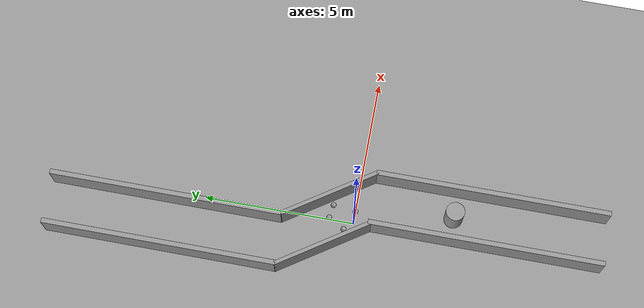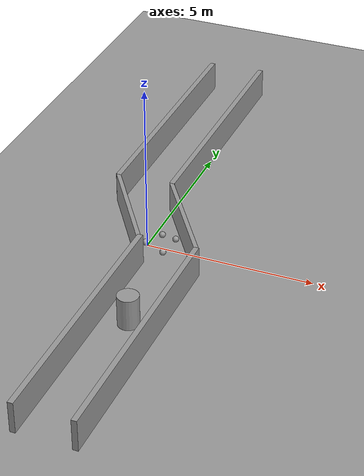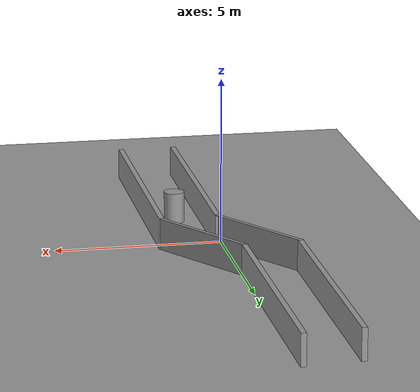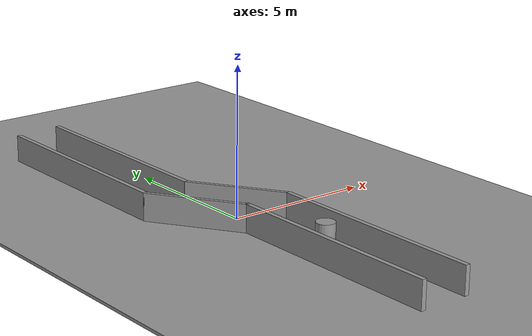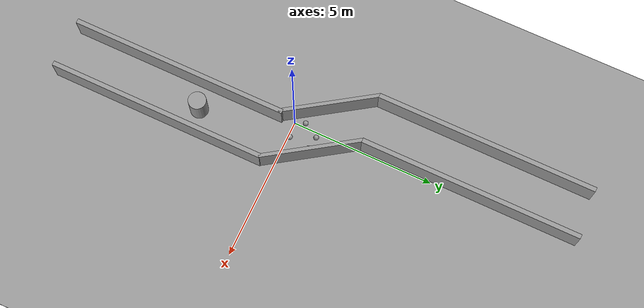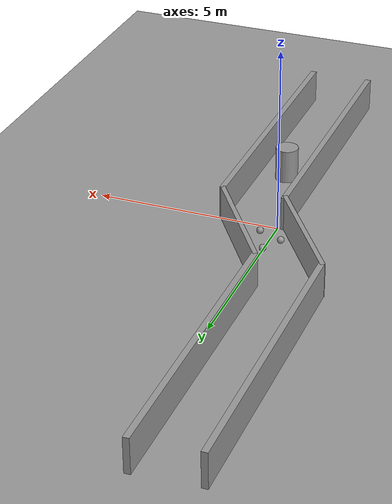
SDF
<?xml version='1.0'?>
<sdf version='1.6'>
  <model name='Corridor'>
    <link name='link_0'>
      <inertial>
        <mass>1.26082</mass>
        <inertia>
          <ixx>6.48048</ixx>
          <ixy>0</ixy>
          <ixz>0</ixz>
          <iyy>0.107821</iyy>
          <iyz>0</iyz>
          <izz>6.37816</izz>
        </inertia>
        <pose frame=''>0 0 0 0 -0 0</pose>
      </inertial>
      <pose frame=''>1.70489 -4.358 0.167782 0 -0 0</pose>
      <visual name='visual'>
        <pose frame=''>0 0 0 0 -0 0</pose>
        <geometry>
          <box>
            <size>0.161859 7.78964 1</size>
          </box>
        </geometry>
        <material>
          <lighting>1</lighting>
          <script>
            <uri>file://media/materials/scripts/gazebo.material</uri>
            <name>Gazebo/Grey</name>
          </script>
          <shader type='pixel'/>
        </material>
        <transparency>0</transparency>
        <cast_shadows>1</cast_shadows>
      </visual>
      <collision name='collision'>
        <laser_retro>0</laser_retro>
        <max_contacts>10</max_contacts>
        <pose frame=''>0 0 0 0 -0 0</pose>
        <geometry>
          <box>
            <size>0.161859 7.78964 1</size>
          </box>
        </geometry>
        <surface>
          <friction>
            <ode>
              <mu>1</mu>
              <mu2>1</mu2>
              <fdir1>0 0 0</fdir1>
              <slip1>0</slip1>
              <slip2>0</slip2>
            </ode>
            <torsional>
              <coefficient>1</coefficient>
              <patch_radius>0</patch_radius>
              <surface_radius>0</surface_radius>
              <use_patch_radius>1</use_patch_radius>
              <ode>
                <slip>0</slip>
              </ode>
            </torsional>
          </friction>
          <bounce>
            <restitution_coefficient>0</restitution_coefficient>
            <threshold>1e+06</threshold>
          </bounce>
          <contact>
            <collide_without_contact>0</collide_without_contact>
            <collide_without_contact_bitmask>1</collide_without_contact_bitmask>
            <collide_bitmask>1</collide_bitmask>
            <ode>
              <soft_cfm>0</soft_cfm>
              <soft_erp>0.2</soft_erp>
              <kp>1e+13</kp>
              <kd>1</kd>
              <max_vel>0.01</max_vel>
              <min_depth>0</min_depth>
            </ode>
            <bullet>
              <split_impulse>1</split_impulse>
              <split_impulse_penetration_threshold>-0.01</split_impulse_penetration_threshold>
              <soft_cfm>0</soft_cfm>
              <soft_erp>0.2</soft_erp>
              <kp>1e+13</kp>
              <kd>1</kd>
            </bullet>
          </contact>
        </surface>
      </collision>
    </link>
    <link name='link_0_clone'>
      <inertial>
        <mass>1.26125</mass>
        <inertia>
          <ixx>6.48266</ixx>
          <ixy>0</ixy>
          <ixz>0</ixz>
          <iyy>0.107858</iyy>
          <iyz>0</iyz>
          <izz>6.38031</izz>
        </inertia>
        <pose frame=''>0 0 0 0 -0 0</pose>
      </inertial>
      <pose frame=''>-0.004073 -4.358 0.167782 0 -0 0</pose>
      <visual name='visual'>
        <pose frame=''>0 0 0 0 -0 0</pose>
        <geometry>
          <box>
            <size>0.161859 7.78964 1</size>
          </box>
        </geometry>
        <material>
          <lighting>1</lighting>
          <script>
            <uri>file://media/materials/scripts/gazebo.material</uri>
            <name>Gazebo/Grey</name>
          </script>
          <shader type='pixel'/>
        </material>
        <transparency>0</transparency>
        <cast_shadows>1</cast_shadows>
      </visual>
      <collision name='collision'>
        <laser_retro>0</laser_retro>
        <max_contacts>10</max_contacts>
        <pose frame=''>0 0 0 0 -0 0</pose>
        <geometry>
          <box>
            <size>0.161859 7.78964 1</size>
          </box>
        </geometry>
        <surface>
          <friction>
            <ode>
              <mu>1</mu>
              <mu2>1</mu2>
              <fdir1>0 0 0</fdir1>
              <slip1>0</slip1>
              <slip2>0</slip2>
            </ode>
            <torsional>
              <coefficient>1</coefficient>
              <patch_radius>0</patch_radius>
              <surface_radius>0</surface_radius>
              <use_patch_radius>1</use_patch_radius>
              <ode>
                <slip>0</slip>
              </ode>
            </torsional>
          </friction>
          <bounce>
            <restitution_coefficient>0</restitution_coefficient>
            <threshold>1e+06</threshold>
          </bounce>
          <contact>
            <collide_without_contact>0</collide_without_contact>
            <collide_without_contact_bitmask>1</collide_without_contact_bitmask>
            <collide_bitmask>1</collide_bitmask>
            <ode>
              <soft_cfm>0</soft_cfm>
              <soft_erp>0.2</soft_erp>
              <kp>1e+13</kp>
              <kd>1</kd>
              <max_vel>0.01</max_vel>
              <min_depth>0</min_depth>
            </ode>
            <bullet>
              <split_impulse>1</split_impulse>
              <split_impulse_penetration_threshold>-0.01</split_impulse_penetration_threshold>
              <soft_cfm>0</soft_cfm>
              <soft_erp>0.2</soft_erp>
              <kp>1e+13</kp>
              <kd>1</kd>
            </bullet>
          </contact>
        </surface>
      </collision>
    </link>
    <link name='link_0_clone_0'>
      <inertial>
        <mass>1.26082</mass>
        <inertia>
          <ixx>6.48048</ixx>
          <ixy>0</ixy>
          <ixz>0</ixz>
          <iyy>0.107821</iyy>
          <iyz>0</iyz>
          <izz>6.37816</izz>
        </inertia>
        <pose frame=''>0 0 0 0 -0 0</pose>
      </inertial>
      <pose frame=''>-0.227465 6.27497 0.167782 0 -0 0</pose>
      <visual name='visual'>
        <pose frame=''>0 0 0 0 -0 0</pose>
        <geometry>
          <box>
            <size>0.161859 7.78964 1</size>
          </box>
        </geometry>
        <material>
          <lighting>1</lighting>
          <script>
            <uri>file://media/materials/scripts/gazebo.material</uri>
            <name>Gazebo/Grey</name>
          </script>
          <shader type='pixel'/>
        </material>
        <transparency>0</transparency>
        <cast_shadows>1</cast_shadows>
      </visual>
      <collision name='collision'>
        <laser_retro>0</laser_retro>
        <max_contacts>10</max_contacts>
        <pose frame=''>0 0 0 0 -0 0</pose>
        <geometry>
          <box>
            <size>0.161859 7.78964 1</size>
          </box>
        </geometry>
        <surface>
          <friction>
            <ode>
              <mu>1</mu>
              <mu2>1</mu2>
              <fdir1>0 0 0</fdir1>
              <slip1>0</slip1>
              <slip2>0</slip2>
            </ode>
            <torsional>
              <coefficient>1</coefficient>
              <patch_radius>0</patch_radius>
              <surface_radius>0</surface_radius>
              <use_patch_radius>1</use_patch_radius>
              <ode>
                <slip>0</slip>
              </ode>
            </torsional>
          </friction>
          <bounce>
            <restitution_coefficient>0</restitution_coefficient>
            <threshold>1e+06</threshold>
          </bounce>
          <contact>
            <collide_without_contact>0</collide_without_contact>
            <collide_without_contact_bitmask>1</collide_without_contact_bitmask>
            <collide_bitmask>1</collide_bitmask>
            <ode>
              <soft_cfm>0</soft_cfm>
              <soft_erp>0.2</soft_erp>
              <kp>1e+13</kp>
              <kd>1</kd>
              <max_vel>0.01</max_vel>
              <min_depth>0</min_depth>
            </ode>
            <bullet>
              <split_impulse>1</split_impulse>
              <split_impulse_penetration_threshold>-0.01</split_impulse_penetration_threshold>
              <soft_cfm>0</soft_cfm>
              <soft_erp>0.2</soft_erp>
              <kp>1e+13</kp>
              <kd>1</kd>
            </bullet>
          </contact>
        </surface>
      </collision>
    </link>
    <link name='link_0_clone_0_clone'>
      <inertial>
        <mass>1.26082</mass>
        <inertia>
          <ixx>6.48048</ixx>
          <ixy>0</ixy>
          <ixz>0</ixz>
          <iyy>0.107821</iyy>
          <iyz>0</iyz>
          <izz>6.37816</izz>
        </inertia>
        <pose frame=''>0 0 0 0 -0 0</pose>
      </inertial>
      <pose frame=''>-1.91077 6.14262 0.167782 0 -0 0</pose>
      <visual name='visual'>
        <pose frame=''>0 0 0 0 -0 0</pose>
        <geometry>
          <box>
            <size>0.161859 7.78964 1</size>
          </box>
        </geometry>
        <material>
          <lighting>1</lighting>
          <script>
            <uri>file://media/materials/scripts/gazebo.material</uri>
            <name>Gazebo/Grey</name>
          </script>
          <shader type='pixel'/>
        </material>
        <transparency>0</transparency>
        <cast_shadows>1</cast_shadows>
      </visual>
      <collision name='collision'>
        <laser_retro>0</laser_retro>
        <max_contacts>10</max_contacts>
        <pose frame=''>0 0 0 0 -0 0</pose>
        <geometry>
          <box>
            <size>0.161859 7.78964 1</size>
          </box>
        </geometry>
        <surface>
          <friction>
            <ode>
              <mu>1</mu>
              <mu2>1</mu2>
              <fdir1>0 0 0</fdir1>
              <slip1>0</slip1>
              <slip2>0</slip2>
            </ode>
            <torsional>
              <coefficient>1</coefficient>
              <patch_radius>0</patch_radius>
              <surface_radius>0</surface_radius>
              <use_patch_radius>1</use_patch_radius>
              <ode>
                <slip>0</slip>
              </ode>
            </torsional>
          </friction>
          <bounce>
            <restitution_coefficient>0</restitution_coefficient>
            <threshold>1e+06</threshold>
          </bounce>
          <contact>
            <collide_without_contact>0</collide_without_contact>
            <collide_without_contact_bitmask>1</collide_without_contact_bitmask>
            <collide_bitmask>1</collide_bitmask>
            <ode>
              <soft_cfm>0</soft_cfm>
              <soft_erp>0.2</soft_erp>
              <kp>1e+13</kp>
              <kd>1</kd>
              <max_vel>0.01</max_vel>
              <min_depth>0</min_depth>
            </ode>
            <bullet>
              <split_impulse>1</split_impulse>
              <split_impulse_penetration_threshold>-0.01</split_impulse_penetration_threshold>
              <soft_cfm>0</soft_cfm>
              <soft_erp>0.2</soft_erp>
              <kp>1e+13</kp>
              <kd>1</kd>
            </bullet>
          </contact>
        </surface>
      </collision>
    </link>
    <link name='link_1'>
      <inertial>
        <mass>0.392117</mass>
        <inertia>
          <ixx>0.0422861</ixx>
          <ixy>0</ixy>
          <ixz>0</ixz>
          <iyy>0.0422861</iyy>
          <iyz>0</iyz>
          <izz>0.0192193</izz>
        </inertia>
        <pose frame=''>0 0 0 0 -0 0</pose>
      </inertial>
      <pose frame=''>0.848895 -3.22281 0.167782 0 -0 0</pose>
      <visual name='visual'>
        <pose frame=''>0 0 0 0 -0 0</pose>
        <geometry>
          <cylinder>
            <radius>0.313095</radius>
            <length>1</length>
          </cylinder>
        </geometry>
        <material>
          <lighting>1</lighting>
          <script>
            <uri>file://media/materials/scripts/gazebo.material</uri>
            <name>Gazebo/Grey</name>
          </script>
          <shader type='pixel'/>
        </material>
        <transparency>0</transparency>
        <cast_shadows>1</cast_shadows>
      </visual>
      <collision name='collision'>
        <laser_retro>0</laser_retro>
        <max_contacts>10</max_contacts>
        <pose frame=''>0 0 0 0 -0 0</pose>
        <geometry>
          <cylinder>
            <radius>0.313095</radius>
            <length>1</length>
          </cylinder>
        </geometry>
        <surface>
          <friction>
            <ode>
              <mu>1</mu>
              <mu2>1</mu2>
              <fdir1>0 0 0</fdir1>
              <slip1>0</slip1>
              <slip2>0</slip2>
            </ode>
            <torsional>
              <coefficient>1</coefficient>
              <patch_radius>0</patch_radius>
              <surface_radius>0</surface_radius>
              <use_patch_radius>1</use_patch_radius>
              <ode>
                <slip>0</slip>
              </ode>
            </torsional>
          </friction>
          <bounce>
            <restitution_coefficient>0</restitution_coefficient>
            <threshold>1e+06</threshold>
          </bounce>
          <contact>
            <collide_without_contact>0</collide_without_contact>
            <collide_without_contact_bitmask>1</collide_without_contact_bitmask>
            <collide_bitmask>1</collide_bitmask>
            <ode>
              <soft_cfm>0</soft_cfm>
              <soft_erp>0.2</soft_erp>
              <kp>1e+13</kp>
              <kd>1</kd>
              <max_vel>0.01</max_vel>
              <min_depth>0</min_depth>
            </ode>
            <bullet>
              <split_impulse>1</split_impulse>
              <split_impulse_penetration_threshold>-0.01</split_impulse_penetration_threshold>
              <soft_cfm>0</soft_cfm>
              <soft_erp>0.2</soft_erp>
              <kp>1e+13</kp>
              <kd>1</kd>
            </bullet>
          </contact>
        </surface>
      </collision>
    </link>
    <link name='link_2'>
      <inertial>
        <mass>0.447994</mass>
        <inertia>
          <ixx>0.499011</ixx>
          <ixy>0</ixy>
          <ixz>0</ixz>
          <iyy>0.0379382</iyy>
          <iyz>0</iyz>
          <izz>0.462283</izz>
        </inertia>
        <pose frame=''>0 0 0 0 -0 0</pose>
      </inertial>
      <pose frame=''>-0.964496 0.844847 0.167782 0 -0 0.594117</pose>
      <visual name='visual'>
        <pose frame=''>0 0 0 0 -0 0</pose>
        <geometry>
          <box>
            <size>0.12734 3.51661 1</size>
          </box>
        </geometry>
        <material>
          <lighting>1</lighting>
          <script>
            <uri>file://media/materials/scripts/gazebo.material</uri>
            <name>Gazebo/Grey</name>
          </script>
          <shader type='pixel'/>
        </material>
        <transparency>0</transparency>
        <cast_shadows>1</cast_shadows>
      </visual>
      <collision name='collision'>
        <laser_retro>0</laser_retro>
        <max_contacts>10</max_contacts>
        <pose frame=''>0 0 0 0 -0 0</pose>
        <geometry>
          <box>
            <size>0.12734 3.51661 1</size>
          </box>
        </geometry>
        <surface>
          <friction>
            <ode>
              <mu>1</mu>
              <mu2>1</mu2>
              <fdir1>0 0 0</fdir1>
              <slip1>0</slip1>
              <slip2>0</slip2>
            </ode>
            <torsional>
              <coefficient>1</coefficient>
              <patch_radius>0</patch_radius>
              <surface_radius>0</surface_radius>
              <use_patch_radius>1</use_patch_radius>
              <ode>
                <slip>0</slip>
              </ode>
            </torsional>
          </friction>
          <bounce>
            <restitution_coefficient>0</restitution_coefficient>
            <threshold>1e+06</threshold>
          </bounce>
          <contact>
            <collide_without_contact>0</collide_without_contact>
            <collide_without_contact_bitmask>1</collide_without_contact_bitmask>
            <collide_bitmask>1</collide_bitmask>
            <ode>
              <soft_cfm>0</soft_cfm>
              <soft_erp>0.2</soft_erp>
              <kp>1e+13</kp>
              <kd>1</kd>
              <max_vel>0.01</max_vel>
              <min_depth>0</min_depth>
            </ode>
            <bullet>
              <split_impulse>1</split_impulse>
              <split_impulse_penetration_threshold>-0.01</split_impulse_penetration_threshold>
              <soft_cfm>0</soft_cfm>
              <soft_erp>0.2</soft_erp>
              <kp>1e+13</kp>
              <kd>1</kd>
            </bullet>
          </contact>
        </surface>
      </collision>
    </link>
    <link name='link_2_clone'>
      <inertial>
        <mass>0.447994</mass>
        <inertia>
          <ixx>0.499011</ixx>
          <ixy>0</ixy>
          <ixz>0</ixz>
          <iyy>0.0379382</iyy>
          <iyz>0</iyz>
          <izz>0.462283</izz>
        </inertia>
        <pose frame=''>0 0 0 0 -0 0</pose>
      </inertial>
      <pose frame=''>0.741321 0.938377 0.167782 0 -0 0.594117</pose>
      <visual name='visual'>
        <pose frame=''>0 0 0 0 -0 0</pose>
        <geometry>
          <box>
            <size>0.12734 3.51661 1</size>
          </box>
        </geometry>
        <material>
          <lighting>1</lighting>
          <script>
            <uri>file://media/materials/scripts/gazebo.material</uri>
            <name>Gazebo/Grey</name>
          </script>
          <shader type='pixel'/>
        </material>
        <transparency>0</transparency>
        <cast_shadows>1</cast_shadows>
      </visual>
      <collision name='collision'>
        <laser_retro>0</laser_retro>
        <max_contacts>10</max_contacts>
        <pose frame=''>0 0 0 0 -0 0</pose>
        <geometry>
          <box>
            <size>0.12734 3.51661 1</size>
          </box>
        </geometry>
        <surface>
          <friction>
            <ode>
              <mu>1</mu>
              <mu2>1</mu2>
              <fdir1>0 0 0</fdir1>
              <slip1>0</slip1>
              <slip2>0</slip2>
            </ode>
            <torsional>
              <coefficient>1</coefficient>
              <patch_radius>0</patch_radius>
              <surface_radius>0</surface_radius>
              <use_patch_radius>1</use_patch_radius>
              <ode>
                <slip>0</slip>
              </ode>
            </torsional>
          </friction>
          <bounce>
            <restitution_coefficient>0</restitution_coefficient>
            <threshold>1e+06</threshold>
          </bounce>
          <contact>
            <collide_without_contact>0</collide_without_contact>
            <collide_without_contact_bitmask>1</collide_without_contact_bitmask>
            <collide_bitmask>1</collide_bitmask>
            <ode>
              <soft_cfm>0</soft_cfm>
              <soft_erp>0.2</soft_erp>
              <kp>1e+13</kp>
              <kd>1</kd>
              <max_vel>0.01</max_vel>
              <min_depth>0</min_depth>
            </ode>
            <bullet>
              <split_impulse>1</split_impulse>
              <split_impulse_penetration_threshold>-0.01</split_impulse_penetration_threshold>
              <soft_cfm>0</soft_cfm>
              <soft_erp>0.2</soft_erp>
              <kp>1e+13</kp>
              <kd>1</kd>
            </bullet>
          </contact>
        </surface>
      </collision>
    </link>
    <link name='link_3'>
      <inertial>
        <mass>0.00667106</mass>
        <inertia>
          <ixx>2.36399e-05</ixx>
          <ixy>0</ixy>
          <ixz>0</ixz>
          <iyy>2.36399e-05</iyy>
          <iyz>0</iyz>
          <izz>2.36399e-05</izz>
        </inertia>
        <pose frame=''>0 0 0 0 -0 0</pose>
      </inertial>
      <pose frame=''>0.47142 0.022307 -0.127508 0 -0 0</pose>
      <visual name='visual'>
        <pose frame=''>0 0 0 0 -0 0</pose>
        <geometry>
          <sphere>
            <radius>0.0941229</radius>
          </sphere>
        </geometry>
        <material>
          <lighting>1</lighting>
          <script>
            <uri>file://media/materials/scripts/gazebo.material</uri>
            <name>Gazebo/Grey</name>
          </script>
          <shader type='pixel'/>
        </material>
        <transparency>0</transparency>
        <cast_shadows>1</cast_shadows>
      </visual>
      <collision name='collision'>
        <laser_retro>0</laser_retro>
        <max_contacts>10</max_contacts>
        <pose frame=''>0 0 0 0 -0 0</pose>
        <geometry>
          <sphere>
            <radius>0.094123</radius>
          </sphere>
        </geometry>
        <surface>
          <friction>
            <ode>
              <mu>1</mu>
              <mu2>1</mu2>
              <fdir1>0 0 0</fdir1>
              <slip1>0</slip1>
              <slip2>0</slip2>
            </ode>
            <torsional>
              <coefficient>1</coefficient>
              <patch_radius>0</patch_radius>
              <surface_radius>0</surface_radius>
              <use_patch_radius>1</use_patch_radius>
              <ode>
                <slip>0</slip>
              </ode>
            </torsional>
          </friction>
          <bounce>
            <restitution_coefficient>0</restitution_coefficient>
            <threshold>1e+06</threshold>
          </bounce>
          <contact>
            <collide_without_contact>0</collide_without_contact>
            <collide_without_contact_bitmask>1</collide_without_contact_bitmask>
            <collide_bitmask>1</collide_bitmask>
            <ode>
              <soft_cfm>0</soft_cfm>
              <soft_erp>0.2</soft_erp>
              <kp>1e+13</kp>
              <kd>1</kd>
              <max_vel>0.01</max_vel>
              <min_depth>0</min_depth>
            </ode>
            <bullet>
              <split_impulse>1</split_impulse>
              <split_impulse_penetration_threshold>-0.01</split_impulse_penetration_threshold>
              <soft_cfm>0</soft_cfm>
              <soft_erp>0.2</soft_erp>
              <kp>1e+13</kp>
              <kd>1</kd>
            </bullet>
          </contact>
        </surface>
      </collision>
    </link>
    <link name='link_3_clone'>
      <inertial>
        <mass>0.00667106</mass>
        <inertia>
          <ixx>2.36399e-05</ixx>
          <ixy>0</ixy>
          <ixz>0</ixz>
          <iyy>2.36399e-05</iyy>
          <iyz>0</iyz>
          <izz>2.36399e-05</izz>
        </inertia>
        <pose frame=''>0 0 0 0 -0 0</pose>
      </inertial>
      <pose frame=''>0.562054 0.774041 -0.127508 0 -0 0</pose>
      <visual name='visual'>
        <pose frame=''>0 0 0 0 -0 0</pose>
        <geometry>
          <sphere>
            <radius>0.0941229</radius>
          </sphere>
        </geometry>
        <material>
          <lighting>1</lighting>
          <script>
            <uri>file://media/materials/scripts/gazebo.material</uri>
            <name>Gazebo/Grey</name>
          </script>
          <shader type='pixel'/>
        </material>
        <transparency>0</transparency>
        <cast_shadows>1</cast_shadows>
      </visual>
      <collision name='collision'>
        <laser_retro>0</laser_retro>
        <max_contacts>10</max_contacts>
        <pose frame=''>0 0 0 0 -0 0</pose>
        <geometry>
          <sphere>
            <radius>0.094123</radius>
          </sphere>
        </geometry>
        <surface>
          <friction>
            <ode>
              <mu>1</mu>
              <mu2>1</mu2>
              <fdir1>0 0 0</fdir1>
              <slip1>0</slip1>
              <slip2>0</slip2>
            </ode>
            <torsional>
              <coefficient>1</coefficient>
              <patch_radius>0</patch_radius>
              <surface_radius>0</surface_radius>
              <use_patch_radius>1</use_patch_radius>
              <ode>
                <slip>0</slip>
              </ode>
            </torsional>
          </friction>
          <bounce>
            <restitution_coefficient>0</restitution_coefficient>
            <threshold>1e+06</threshold>
          </bounce>
          <contact>
            <collide_without_contact>0</collide_without_contact>
            <collide_without_contact_bitmask>1</collide_without_contact_bitmask>
            <collide_bitmask>1</collide_bitmask>
            <ode>
              <soft_cfm>0</soft_cfm>
              <soft_erp>0.2</soft_erp>
              <kp>1e+13</kp>
              <kd>1</kd>
              <max_vel>0.01</max_vel>
              <min_depth>0</min_depth>
            </ode>
            <bullet>
              <split_impulse>1</split_impulse>
              <split_impulse_penetration_threshold>-0.01</split_impulse_penetration_threshold>
              <soft_cfm>0</soft_cfm>
              <soft_erp>0.2</soft_erp>
              <kp>1e+13</kp>
              <kd>1</kd>
            </bullet>
          </contact>
        </surface>
      </collision>
    </link>
    <link name='link_3_clone_clone'>
      <inertial>
        <mass>0.00667106</mass>
        <inertia>
          <ixx>2.36399e-05</ixx>
          <ixy>0</ixy>
          <ixz>0</ixz>
          <iyy>2.36399e-05</iyy>
          <iyz>0</iyz>
          <izz>2.36399e-05</izz>
        </inertia>
        <pose frame=''>0 0 0 0 -0 0</pose>
      </inertial>
      <pose frame=''>-0.195701 0.303267 -0.127508 0 -0 0</pose>
      <visual name='visual'>
        <pose frame=''>0 0 0 0 -0 0</pose>
        <geometry>
          <sphere>
            <radius>0.0941229</radius>
          </sphere>
        </geometry>
        <material>
          <lighting>1</lighting>
          <script>
            <uri>file://media/materials/scripts/gazebo.material</uri>
            <name>Gazebo/Grey</name>
          </script>
          <shader type='pixel'/>
        </material>
        <transparency>0</transparency>
        <cast_shadows>1</cast_shadows>
      </visual>
      <collision name='collision'>
        <laser_retro>0</laser_retro>
        <max_contacts>10</max_contacts>
        <pose frame=''>0 0 0 0 -0 0</pose>
        <geometry>
          <sphere>
            <radius>0.094123</radius>
          </sphere>
        </geometry>
        <surface>
          <friction>
            <ode>
              <mu>1</mu>
              <mu2>1</mu2>
              <fdir1>0 0 0</fdir1>
              <slip1>0</slip1>
              <slip2>0</slip2>
            </ode>
            <torsional>
              <coefficient>1</coefficient>
              <patch_radius>0</patch_radius>
              <surface_radius>0</surface_radius>
              <use_patch_radius>1</use_patch_radius>
              <ode>
                <slip>0</slip>
              </ode>
            </torsional>
          </friction>
          <bounce>
            <restitution_coefficient>0</restitution_coefficient>
            <threshold>1e+06</threshold>
          </bounce>
          <contact>
            <collide_without_contact>0</collide_without_contact>
            <collide_without_contact_bitmask>1</collide_without_contact_bitmask>
            <collide_bitmask>1</collide_bitmask>
            <ode>
              <soft_cfm>0</soft_cfm>
              <soft_erp>0.2</soft_erp>
              <kp>1e+13</kp>
              <kd>1</kd>
              <max_vel>0.01</max_vel>
              <min_depth>0</min_depth>
            </ode>
            <bullet>
              <split_impulse>1</split_impulse>
              <split_impulse_penetration_threshold>-0.01</split_impulse_penetration_threshold>
              <soft_cfm>0</soft_cfm>
              <soft_erp>0.2</soft_erp>
              <kp>1e+13</kp>
              <kd>1</kd>
            </bullet>
          </contact>
        </surface>
      </collision>
    </link>
    <link name='link_3_clone_clone_clone'>
      <inertial>
        <mass>0.00667106</mass>
        <inertia>
          <ixx>2.36399e-05</ixx>
          <ixy>0</ixy>
          <ixz>0</ixz>
          <iyy>2.36399e-05</iyy>
          <iyz>0</iyz>
          <izz>2.36399e-05</izz>
        </inertia>
        <pose frame=''>0 0 0 0 -0 0</pose>
      </inertial>
      <pose frame=''>0.111916 0.841843 -0.127508 0 -0 0</pose>
      <visual name='visual'>
        <pose frame=''>0 0 0 0 -0 0</pose>
        <geometry>
          <sphere>
            <radius>0.0941229</radius>
          </sphere>
        </geometry>
        <material>
          <lighting>1</lighting>
          <script>
            <uri>file://media/materials/scripts/gazebo.material</uri>
            <name>Gazebo/Grey</name>
          </script>
          <shader type='pixel'/>
        </material>
        <transparency>0</transparency>
        <cast_shadows>1</cast_shadows>
      </visual>
      <collision name='collision'>
        <laser_retro>0</laser_retro>
        <max_contacts>10</max_contacts>
        <pose frame=''>0 0 0 0 -0 0</pose>
        <geometry>
          <sphere>
            <radius>0.094123</radius>
          </sphere>
        </geometry>
        <surface>
          <friction>
            <ode>
              <mu>1</mu>
              <mu2>1</mu2>
              <fdir1>0 0 0</fdir1>
              <slip1>0</slip1>
              <slip2>0</slip2>
            </ode>
            <torsional>
              <coefficient>1</coefficient>
              <patch_radius>0</patch_radius>
              <surface_radius>0</surface_radius>
              <use_patch_radius>1</use_patch_radius>
              <ode>
                <slip>0</slip>
              </ode>
            </torsional>
          </friction>
          <bounce>
            <restitution_coefficient>0</restitution_coefficient>
            <threshold>1e+06</threshold>
          </bounce>
          <contact>
            <collide_without_contact>0</collide_without_contact>
            <collide_without_contact_bitmask>1</collide_without_contact_bitmask>
            <collide_bitmask>1</collide_bitmask>
            <ode>
              <soft_cfm>0</soft_cfm>
              <soft_erp>0.2</soft_erp>
              <kp>1e+13</kp>
              <kd>1</kd>
              <max_vel>0.01</max_vel>
              <min_depth>0</min_depth>
            </ode>
            <bullet>
              <split_impulse>1</split_impulse>
              <split_impulse_penetration_threshold>-0.01</split_impulse_penetration_threshold>
              <soft_cfm>0</soft_cfm>
              <soft_erp>0.2</soft_erp>
              <kp>1e+13</kp>
              <kd>1</kd>
            </bullet>
          </contact>
        </surface>
      </collision>
    </link>
    <model name='ground_plane'>
      <static>1</static>
      <link name='link'>
        <collision name='collision'>
          <geometry>
            <plane>
              <normal>0 0 1</normal>
              <size>100 100</size>
            </plane>
          </geometry>
          <surface>
            <contact>
              <collide_bitmask>65535</collide_bitmask>
            </contact>
            <friction>
              <ode>
                <mu>100</mu>
                <mu2>50</mu2>
              </ode>
            </friction>
          </surface>
        </collision>
        <visual name='visual'>
          <cast_shadows>0</cast_shadows>
          <geometry>
            <plane>
              <normal>0 0 1</normal>
              <size>100 100</size>
            </plane>
          </geometry>
          <material>
            <script>
              <uri>file://media/materials/scripts/gazebo.material</uri>
              <name>Gazebo/Grey</name>
            </script>
          </material>
        </visual>
      </link>
      <pose frame=''>0.515744 -3.54741 -0.332218 0 -0 0</pose>
    </model>
    <model name='ground_plane_clone'>
      <static>1</static>
      <link name='link'>
        <collision name='collision'>
          <geometry>
            <plane>
              <normal>0 0 1</normal>
              <size>100 100</size>
            </plane>
          </geometry>
          <surface>
            <contact>
              <collide_bitmask>65535</collide_bitmask>
            </contact>
            <friction>
              <ode>
                <mu>100</mu>
                <mu2>50</mu2>
              </ode>
            </friction>
          </surface>
        </collision>
        <visual name='visual'>
          <cast_shadows>0</cast_shadows>
          <geometry>
            <plane>
              <normal>0 0 1</normal>
              <size>100 100</size>
            </plane>
          </geometry>
          <material>
            <script>
              <uri>file://media/materials/scripts/gazebo.material</uri>
              <name>Gazebo/Grey</name>
            </script>
          </material>
        </visual>
      </link>
      <pose frame=''>-1.65374 -0.656055 -0.332218 0 -0 0</pose>
    </model>
    <static>0</static>
    <allow_auto_disable>1</allow_auto_disable>
  </model>
</sdf>
